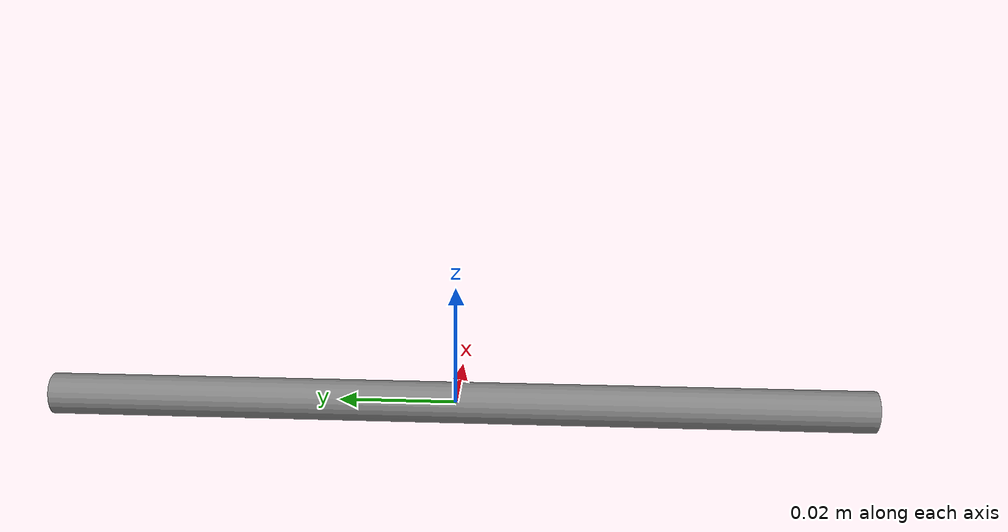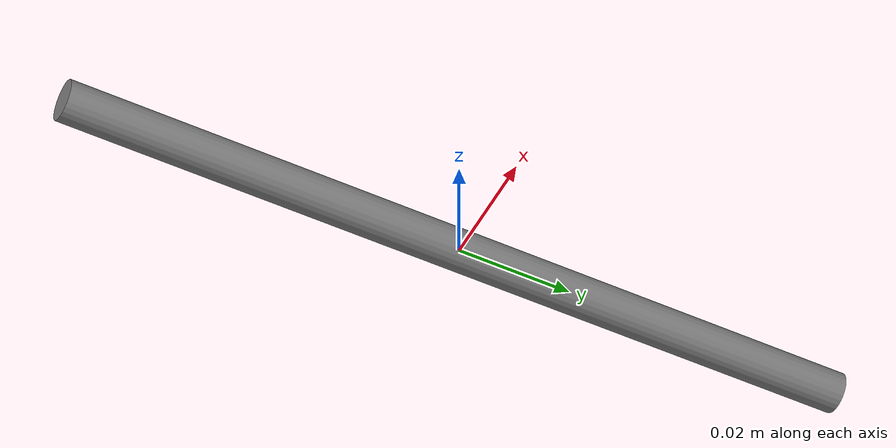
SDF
<?xml version="1.0" ?>
<sdf version="1.5">
    <model name="vessel">
      <link name="vessel_link">
        <pose>0 0 0 0 0 0</pose>
        <collision name="vessel_collision">
          <geometry>
            <mesh>
              <uri>model://vessel/meshes/vessel.stl</uri>
              <scale>0.001 0.001 0.001</scale>
            </mesh>
          </geometry>
        </collision>
        <visual name="vessel_visual">
          <geometry>
            <mesh>
              <uri>model://vessel/meshes/vessel.stl</uri>
              <scale>0.001 0.001 0.001</scale>
            </mesh>
          </geometry>
          <cast_shadows>true</cast_shadows>
	  <material> <!-- Wheel material -->
            <ambient>0.0 0.0 0.5 1</ambient>
            <diffuse>0.5 0.5 0.5 1</diffuse>
            <specular>0.1 0.1 0.1 0</specular>
            <emissive>0 0 0 1</emissive>
          </material>
        </visual>
      </link>
      <static>true</static>
    </model>
</sdf>
